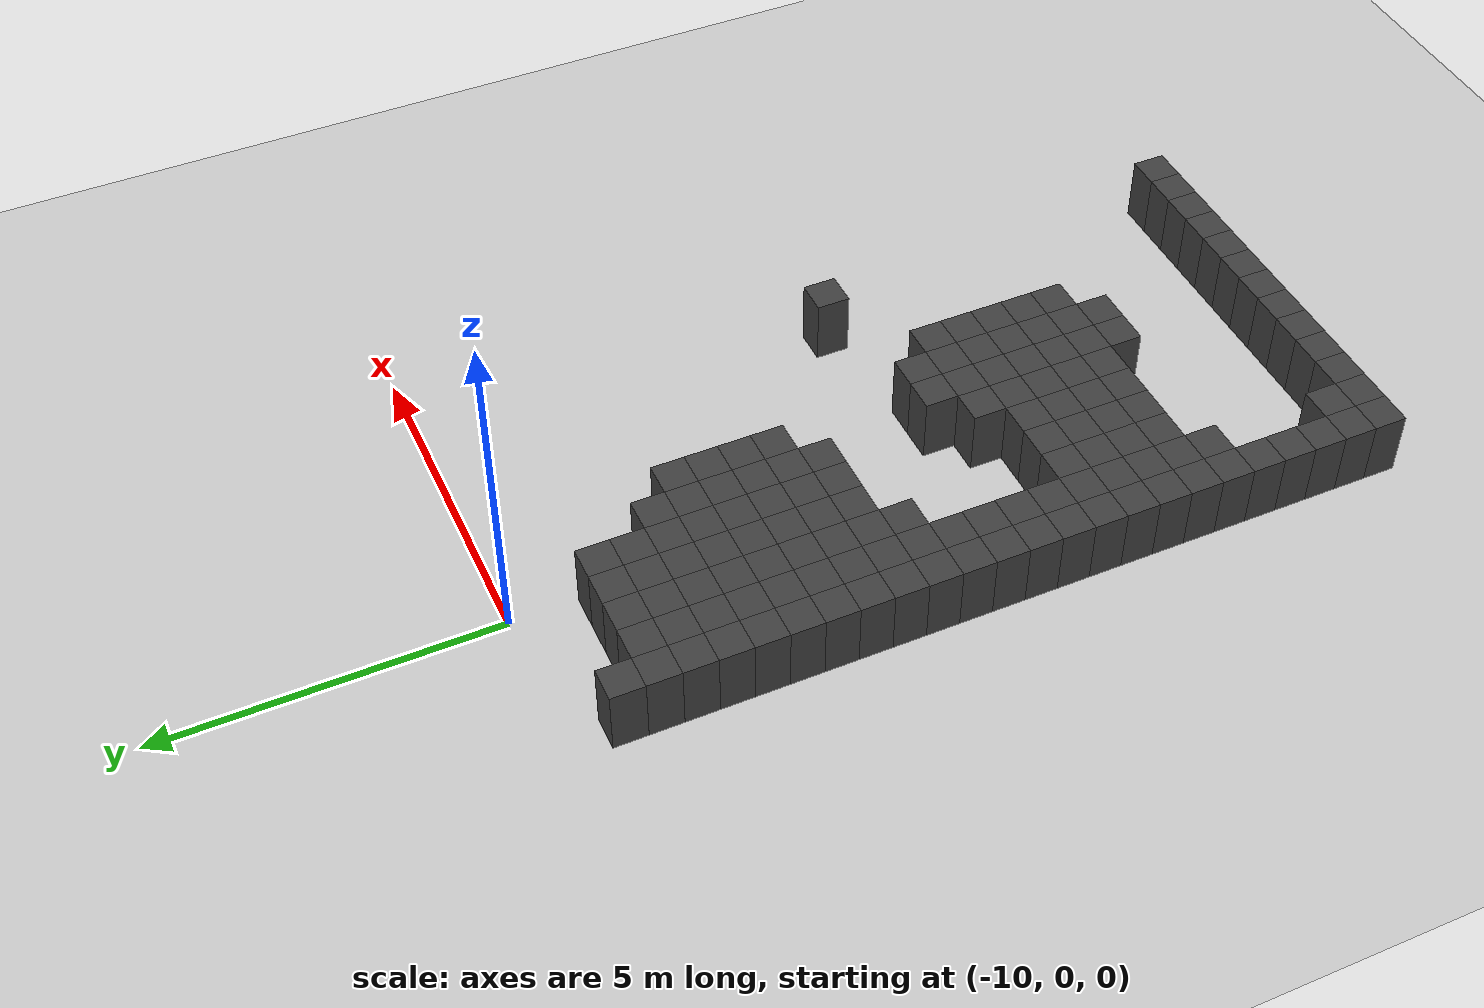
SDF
<sdf version="1.7">
 <world name="map_8843">
  <model name="ground_plane">
   <static>true</static>
   <link name="link">
    <collision name="collision">
     <geometry><plane><normal>0 0 1</normal><size>200 200</size></plane></geometry>
    </collision>
    <visual name="visual">
     <geometry><plane><normal>0 0 1</normal><size>200 200</size></plane></geometry>
     <material><ambient>0.8 0.8 0.8 1</ambient><diffuse>0.8 0.8 0.8 1</diffuse></material>
    </visual>
   </link>
  </model>
  <model name="maze_environment">
   <static>true</static>
   <link name="wall_516">
    <pose>-12.250 -0.750 0.500 0 0 0</pose>
    <collision name="col"><geometry><box><size>0.5 0.5 1.0</size></box></geometry></collision>
    <visual name="vis">
     <geometry><box><size>0.5 0.5 1.0</size></box></geometry>
     <material><ambient>0.15 0.15 0.15 1</ambient><diffuse>0.25 0.25 0.25 1</diffuse></material>
    </visual>
   </link>
   <link name="wall_536">
    <pose>-12.250 -1.250 0.500 0 0 0</pose>
    <collision name="col"><geometry><box><size>0.5 0.5 1.0</size></box></geometry></collision>
    <visual name="vis">
     <geometry><box><size>0.5 0.5 1.0</size></box></geometry>
     <material><ambient>0.15 0.15 0.15 1</ambient><diffuse>0.25 0.25 0.25 1</diffuse></material>
    </visual>
   </link>
   <link name="wall_537">
    <pose>-11.750 -1.250 0.500 0 0 0</pose>
    <collision name="col"><geometry><box><size>0.5 0.5 1.0</size></box></geometry></collision>
    <visual name="vis">
     <geometry><box><size>0.5 0.5 1.0</size></box></geometry>
     <material><ambient>0.15 0.15 0.15 1</ambient><diffuse>0.25 0.25 0.25 1</diffuse></material>
    </visual>
   </link>
   <link name="wall_538">
    <pose>-11.250 -1.250 0.500 0 0 0</pose>
    <collision name="col"><geometry><box><size>0.5 0.5 1.0</size></box></geometry></collision>
    <visual name="vis">
     <geometry><box><size>0.5 0.5 1.0</size></box></geometry>
     <material><ambient>0.15 0.15 0.15 1</ambient><diffuse>0.25 0.25 0.25 1</diffuse></material>
    </visual>
   </link>
   <link name="wall_539">
    <pose>-10.750 -1.250 0.500 0 0 0</pose>
    <collision name="col"><geometry><box><size>0.5 0.5 1.0</size></box></geometry></collision>
    <visual name="vis">
     <geometry><box><size>0.5 0.5 1.0</size></box></geometry>
     <material><ambient>0.15 0.15 0.15 1</ambient><diffuse>0.25 0.25 0.25 1</diffuse></material>
    </visual>
   </link>
   <link name="wall_540">
    <pose>-10.250 -1.250 0.500 0 0 0</pose>
    <collision name="col"><geometry><box><size>0.5 0.5 1.0</size></box></geometry></collision>
    <visual name="vis">
     <geometry><box><size>0.5 0.5 1.0</size></box></geometry>
     <material><ambient>0.15 0.15 0.15 1</ambient><diffuse>0.25 0.25 0.25 1</diffuse></material>
    </visual>
   </link>
   <link name="wall_553">
    <pose>-12.250 -1.750 0.500 0 0 0</pose>
    <collision name="col"><geometry><box><size>0.5 0.5 1.0</size></box></geometry></collision>
    <visual name="vis">
     <geometry><box><size>0.5 0.5 1.0</size></box></geometry>
     <material><ambient>0.15 0.15 0.15 1</ambient><diffuse>0.25 0.25 0.25 1</diffuse></material>
    </visual>
   </link>
   <link name="wall_554">
    <pose>-11.750 -1.750 0.500 0 0 0</pose>
    <collision name="col"><geometry><box><size>0.5 0.5 1.0</size></box></geometry></collision>
    <visual name="vis">
     <geometry><box><size>0.5 0.5 1.0</size></box></geometry>
     <material><ambient>0.15 0.15 0.15 1</ambient><diffuse>0.25 0.25 0.25 1</diffuse></material>
    </visual>
   </link>
   <link name="wall_555">
    <pose>-11.250 -1.750 0.500 0 0 0</pose>
    <collision name="col"><geometry><box><size>0.5 0.5 1.0</size></box></geometry></collision>
    <visual name="vis">
     <geometry><box><size>0.5 0.5 1.0</size></box></geometry>
     <material><ambient>0.15 0.15 0.15 1</ambient><diffuse>0.25 0.25 0.25 1</diffuse></material>
    </visual>
   </link>
   <link name="wall_556">
    <pose>-10.750 -1.750 0.500 0 0 0</pose>
    <collision name="col"><geometry><box><size>0.5 0.5 1.0</size></box></geometry></collision>
    <visual name="vis">
     <geometry><box><size>0.5 0.5 1.0</size></box></geometry>
     <material><ambient>0.15 0.15 0.15 1</ambient><diffuse>0.25 0.25 0.25 1</diffuse></material>
    </visual>
   </link>
   <link name="wall_557">
    <pose>-10.250 -1.750 0.500 0 0 0</pose>
    <collision name="col"><geometry><box><size>0.5 0.5 1.0</size></box></geometry></collision>
    <visual name="vis">
     <geometry><box><size>0.5 0.5 1.0</size></box></geometry>
     <material><ambient>0.15 0.15 0.15 1</ambient><diffuse>0.25 0.25 0.25 1</diffuse></material>
    </visual>
   </link>
   <link name="wall_565">
    <pose>-12.250 -2.250 0.500 0 0 0</pose>
    <collision name="col"><geometry><box><size>0.5 0.5 1.0</size></box></geometry></collision>
    <visual name="vis">
     <geometry><box><size>0.5 0.5 1.0</size></box></geometry>
     <material><ambient>0.15 0.15 0.15 1</ambient><diffuse>0.25 0.25 0.25 1</diffuse></material>
    </visual>
   </link>
   <link name="wall_566">
    <pose>-11.750 -2.250 0.500 0 0 0</pose>
    <collision name="col"><geometry><box><size>0.5 0.5 1.0</size></box></geometry></collision>
    <visual name="vis">
     <geometry><box><size>0.5 0.5 1.0</size></box></geometry>
     <material><ambient>0.15 0.15 0.15 1</ambient><diffuse>0.25 0.25 0.25 1</diffuse></material>
    </visual>
   </link>
   <link name="wall_567">
    <pose>-11.250 -2.250 0.500 0 0 0</pose>
    <collision name="col"><geometry><box><size>0.5 0.5 1.0</size></box></geometry></collision>
    <visual name="vis">
     <geometry><box><size>0.5 0.5 1.0</size></box></geometry>
     <material><ambient>0.15 0.15 0.15 1</ambient><diffuse>0.25 0.25 0.25 1</diffuse></material>
    </visual>
   </link>
   <link name="wall_568">
    <pose>-10.750 -2.250 0.500 0 0 0</pose>
    <collision name="col"><geometry><box><size>0.5 0.5 1.0</size></box></geometry></collision>
    <visual name="vis">
     <geometry><box><size>0.5 0.5 1.0</size></box></geometry>
     <material><ambient>0.15 0.15 0.15 1</ambient><diffuse>0.25 0.25 0.25 1</diffuse></material>
    </visual>
   </link>
   <link name="wall_569">
    <pose>-10.250 -2.250 0.500 0 0 0</pose>
    <collision name="col"><geometry><box><size>0.5 0.5 1.0</size></box></geometry></collision>
    <visual name="vis">
     <geometry><box><size>0.5 0.5 1.0</size></box></geometry>
     <material><ambient>0.15 0.15 0.15 1</ambient><diffuse>0.25 0.25 0.25 1</diffuse></material>
    </visual>
   </link>
   <link name="wall_570">
    <pose>-9.750 -2.250 0.500 0 0 0</pose>
    <collision name="col"><geometry><box><size>0.5 0.5 1.0</size></box></geometry></collision>
    <visual name="vis">
     <geometry><box><size>0.5 0.5 1.0</size></box></geometry>
     <material><ambient>0.15 0.15 0.15 1</ambient><diffuse>0.25 0.25 0.25 1</diffuse></material>
    </visual>
   </link>
   <link name="wall_578">
    <pose>-12.250 -2.750 0.500 0 0 0</pose>
    <collision name="col"><geometry><box><size>0.5 0.5 1.0</size></box></geometry></collision>
    <visual name="vis">
     <geometry><box><size>0.5 0.5 1.0</size></box></geometry>
     <material><ambient>0.15 0.15 0.15 1</ambient><diffuse>0.25 0.25 0.25 1</diffuse></material>
    </visual>
   </link>
   <link name="wall_579">
    <pose>-11.750 -2.750 0.500 0 0 0</pose>
    <collision name="col"><geometry><box><size>0.5 0.5 1.0</size></box></geometry></collision>
    <visual name="vis">
     <geometry><box><size>0.5 0.5 1.0</size></box></geometry>
     <material><ambient>0.15 0.15 0.15 1</ambient><diffuse>0.25 0.25 0.25 1</diffuse></material>
    </visual>
   </link>
   <link name="wall_580">
    <pose>-11.250 -2.750 0.500 0 0 0</pose>
    <collision name="col"><geometry><box><size>0.5 0.5 1.0</size></box></geometry></collision>
    <visual name="vis">
     <geometry><box><size>0.5 0.5 1.0</size></box></geometry>
     <material><ambient>0.15 0.15 0.15 1</ambient><diffuse>0.25 0.25 0.25 1</diffuse></material>
    </visual>
   </link>
   <link name="wall_581">
    <pose>-10.750 -2.750 0.500 0 0 0</pose>
    <collision name="col"><geometry><box><size>0.5 0.5 1.0</size></box></geometry></collision>
    <visual name="vis">
     <geometry><box><size>0.5 0.5 1.0</size></box></geometry>
     <material><ambient>0.15 0.15 0.15 1</ambient><diffuse>0.25 0.25 0.25 1</diffuse></material>
    </visual>
   </link>
   <link name="wall_582">
    <pose>-10.250 -2.750 0.500 0 0 0</pose>
    <collision name="col"><geometry><box><size>0.5 0.5 1.0</size></box></geometry></collision>
    <visual name="vis">
     <geometry><box><size>0.5 0.5 1.0</size></box></geometry>
     <material><ambient>0.15 0.15 0.15 1</ambient><diffuse>0.25 0.25 0.25 1</diffuse></material>
    </visual>
   </link>
   <link name="wall_583">
    <pose>-9.750 -2.750 0.500 0 0 0</pose>
    <collision name="col"><geometry><box><size>0.5 0.5 1.0</size></box></geometry></collision>
    <visual name="vis">
     <geometry><box><size>0.5 0.5 1.0</size></box></geometry>
     <material><ambient>0.15 0.15 0.15 1</ambient><diffuse>0.25 0.25 0.25 1</diffuse></material>
    </visual>
   </link>
   <link name="wall_584">
    <pose>-9.250 -2.750 0.500 0 0 0</pose>
    <collision name="col"><geometry><box><size>0.5 0.5 1.0</size></box></geometry></collision>
    <visual name="vis">
     <geometry><box><size>0.5 0.5 1.0</size></box></geometry>
     <material><ambient>0.15 0.15 0.15 1</ambient><diffuse>0.25 0.25 0.25 1</diffuse></material>
    </visual>
   </link>
   <link name="wall_591">
    <pose>-12.250 -3.250 0.500 0 0 0</pose>
    <collision name="col"><geometry><box><size>0.5 0.5 1.0</size></box></geometry></collision>
    <visual name="vis">
     <geometry><box><size>0.5 0.5 1.0</size></box></geometry>
     <material><ambient>0.15 0.15 0.15 1</ambient><diffuse>0.25 0.25 0.25 1</diffuse></material>
    </visual>
   </link>
   <link name="wall_592">
    <pose>-11.750 -3.250 0.500 0 0 0</pose>
    <collision name="col"><geometry><box><size>0.5 0.5 1.0</size></box></geometry></collision>
    <visual name="vis">
     <geometry><box><size>0.5 0.5 1.0</size></box></geometry>
     <material><ambient>0.15 0.15 0.15 1</ambient><diffuse>0.25 0.25 0.25 1</diffuse></material>
    </visual>
   </link>
   <link name="wall_593">
    <pose>-11.250 -3.250 0.500 0 0 0</pose>
    <collision name="col"><geometry><box><size>0.5 0.5 1.0</size></box></geometry></collision>
    <visual name="vis">
     <geometry><box><size>0.5 0.5 1.0</size></box></geometry>
     <material><ambient>0.15 0.15 0.15 1</ambient><diffuse>0.25 0.25 0.25 1</diffuse></material>
    </visual>
   </link>
   <link name="wall_594">
    <pose>-10.750 -3.250 0.500 0 0 0</pose>
    <collision name="col"><geometry><box><size>0.5 0.5 1.0</size></box></geometry></collision>
    <visual name="vis">
     <geometry><box><size>0.5 0.5 1.0</size></box></geometry>
     <material><ambient>0.15 0.15 0.15 1</ambient><diffuse>0.25 0.25 0.25 1</diffuse></material>
    </visual>
   </link>
   <link name="wall_595">
    <pose>-10.250 -3.250 0.500 0 0 0</pose>
    <collision name="col"><geometry><box><size>0.5 0.5 1.0</size></box></geometry></collision>
    <visual name="vis">
     <geometry><box><size>0.5 0.5 1.0</size></box></geometry>
     <material><ambient>0.15 0.15 0.15 1</ambient><diffuse>0.25 0.25 0.25 1</diffuse></material>
    </visual>
   </link>
   <link name="wall_596">
    <pose>-9.750 -3.250 0.500 0 0 0</pose>
    <collision name="col"><geometry><box><size>0.5 0.5 1.0</size></box></geometry></collision>
    <visual name="vis">
     <geometry><box><size>0.5 0.5 1.0</size></box></geometry>
     <material><ambient>0.15 0.15 0.15 1</ambient><diffuse>0.25 0.25 0.25 1</diffuse></material>
    </visual>
   </link>
   <link name="wall_597">
    <pose>-9.250 -3.250 0.500 0 0 0</pose>
    <collision name="col"><geometry><box><size>0.5 0.5 1.0</size></box></geometry></collision>
    <visual name="vis">
     <geometry><box><size>0.5 0.5 1.0</size></box></geometry>
     <material><ambient>0.15 0.15 0.15 1</ambient><diffuse>0.25 0.25 0.25 1</diffuse></material>
    </visual>
   </link>
   <link name="wall_605">
    <pose>-12.250 -3.750 0.500 0 0 0</pose>
    <collision name="col"><geometry><box><size>0.5 0.5 1.0</size></box></geometry></collision>
    <visual name="vis">
     <geometry><box><size>0.5 0.5 1.0</size></box></geometry>
     <material><ambient>0.15 0.15 0.15 1</ambient><diffuse>0.25 0.25 0.25 1</diffuse></material>
    </visual>
   </link>
   <link name="wall_606">
    <pose>-11.750 -3.750 0.500 0 0 0</pose>
    <collision name="col"><geometry><box><size>0.5 0.5 1.0</size></box></geometry></collision>
    <visual name="vis">
     <geometry><box><size>0.5 0.5 1.0</size></box></geometry>
     <material><ambient>0.15 0.15 0.15 1</ambient><diffuse>0.25 0.25 0.25 1</diffuse></material>
    </visual>
   </link>
   <link name="wall_607">
    <pose>-11.250 -3.750 0.500 0 0 0</pose>
    <collision name="col"><geometry><box><size>0.5 0.5 1.0</size></box></geometry></collision>
    <visual name="vis">
     <geometry><box><size>0.5 0.5 1.0</size></box></geometry>
     <material><ambient>0.15 0.15 0.15 1</ambient><diffuse>0.25 0.25 0.25 1</diffuse></material>
    </visual>
   </link>
   <link name="wall_608">
    <pose>-10.750 -3.750 0.500 0 0 0</pose>
    <collision name="col"><geometry><box><size>0.5 0.5 1.0</size></box></geometry></collision>
    <visual name="vis">
     <geometry><box><size>0.5 0.5 1.0</size></box></geometry>
     <material><ambient>0.15 0.15 0.15 1</ambient><diffuse>0.25 0.25 0.25 1</diffuse></material>
    </visual>
   </link>
   <link name="wall_609">
    <pose>-10.250 -3.750 0.500 0 0 0</pose>
    <collision name="col"><geometry><box><size>0.5 0.5 1.0</size></box></geometry></collision>
    <visual name="vis">
     <geometry><box><size>0.5 0.5 1.0</size></box></geometry>
     <material><ambient>0.15 0.15 0.15 1</ambient><diffuse>0.25 0.25 0.25 1</diffuse></material>
    </visual>
   </link>
   <link name="wall_610">
    <pose>-9.750 -3.750 0.500 0 0 0</pose>
    <collision name="col"><geometry><box><size>0.5 0.5 1.0</size></box></geometry></collision>
    <visual name="vis">
     <geometry><box><size>0.5 0.5 1.0</size></box></geometry>
     <material><ambient>0.15 0.15 0.15 1</ambient><diffuse>0.25 0.25 0.25 1</diffuse></material>
    </visual>
   </link>
   <link name="wall_611">
    <pose>-9.250 -3.750 0.500 0 0 0</pose>
    <collision name="col"><geometry><box><size>0.5 0.5 1.0</size></box></geometry></collision>
    <visual name="vis">
     <geometry><box><size>0.5 0.5 1.0</size></box></geometry>
     <material><ambient>0.15 0.15 0.15 1</ambient><diffuse>0.25 0.25 0.25 1</diffuse></material>
    </visual>
   </link>
   <link name="wall_625">
    <pose>-12.250 -4.250 0.500 0 0 0</pose>
    <collision name="col"><geometry><box><size>0.5 0.5 1.0</size></box></geometry></collision>
    <visual name="vis">
     <geometry><box><size>0.5 0.5 1.0</size></box></geometry>
     <material><ambient>0.15 0.15 0.15 1</ambient><diffuse>0.25 0.25 0.25 1</diffuse></material>
    </visual>
   </link>
   <link name="wall_626">
    <pose>-11.750 -4.250 0.500 0 0 0</pose>
    <collision name="col"><geometry><box><size>0.5 0.5 1.0</size></box></geometry></collision>
    <visual name="vis">
     <geometry><box><size>0.5 0.5 1.0</size></box></geometry>
     <material><ambient>0.15 0.15 0.15 1</ambient><diffuse>0.25 0.25 0.25 1</diffuse></material>
    </visual>
   </link>
   <link name="wall_627">
    <pose>-11.250 -4.250 0.500 0 0 0</pose>
    <collision name="col"><geometry><box><size>0.5 0.5 1.0</size></box></geometry></collision>
    <visual name="vis">
     <geometry><box><size>0.5 0.5 1.0</size></box></geometry>
     <material><ambient>0.15 0.15 0.15 1</ambient><diffuse>0.25 0.25 0.25 1</diffuse></material>
    </visual>
   </link>
   <link name="wall_628">
    <pose>-10.750 -4.250 0.500 0 0 0</pose>
    <collision name="col"><geometry><box><size>0.5 0.5 1.0</size></box></geometry></collision>
    <visual name="vis">
     <geometry><box><size>0.5 0.5 1.0</size></box></geometry>
     <material><ambient>0.15 0.15 0.15 1</ambient><diffuse>0.25 0.25 0.25 1</diffuse></material>
    </visual>
   </link>
   <link name="wall_629">
    <pose>-10.250 -4.250 0.500 0 0 0</pose>
    <collision name="col"><geometry><box><size>0.5 0.5 1.0</size></box></geometry></collision>
    <visual name="vis">
     <geometry><box><size>0.5 0.5 1.0</size></box></geometry>
     <material><ambient>0.15 0.15 0.15 1</ambient><diffuse>0.25 0.25 0.25 1</diffuse></material>
    </visual>
   </link>
   <link name="wall_630">
    <pose>-9.750 -4.250 0.500 0 0 0</pose>
    <collision name="col"><geometry><box><size>0.5 0.5 1.0</size></box></geometry></collision>
    <visual name="vis">
     <geometry><box><size>0.5 0.5 1.0</size></box></geometry>
     <material><ambient>0.15 0.15 0.15 1</ambient><diffuse>0.25 0.25 0.25 1</diffuse></material>
    </visual>
   </link>
   <link name="wall_631">
    <pose>-9.250 -4.250 0.500 0 0 0</pose>
    <collision name="col"><geometry><box><size>0.5 0.5 1.0</size></box></geometry></collision>
    <visual name="vis">
     <geometry><box><size>0.5 0.5 1.0</size></box></geometry>
     <material><ambient>0.15 0.15 0.15 1</ambient><diffuse>0.25 0.25 0.25 1</diffuse></material>
    </visual>
   </link>
   <link name="wall_644">
    <pose>-12.250 -4.750 0.500 0 0 0</pose>
    <collision name="col"><geometry><box><size>0.5 0.5 1.0</size></box></geometry></collision>
    <visual name="vis">
     <geometry><box><size>0.5 0.5 1.0</size></box></geometry>
     <material><ambient>0.15 0.15 0.15 1</ambient><diffuse>0.25 0.25 0.25 1</diffuse></material>
    </visual>
   </link>
   <link name="wall_645">
    <pose>-11.750 -4.750 0.500 0 0 0</pose>
    <collision name="col"><geometry><box><size>0.5 0.5 1.0</size></box></geometry></collision>
    <visual name="vis">
     <geometry><box><size>0.5 0.5 1.0</size></box></geometry>
     <material><ambient>0.15 0.15 0.15 1</ambient><diffuse>0.25 0.25 0.25 1</diffuse></material>
    </visual>
   </link>
   <link name="wall_646">
    <pose>-11.250 -4.750 0.500 0 0 0</pose>
    <collision name="col"><geometry><box><size>0.5 0.5 1.0</size></box></geometry></collision>
    <visual name="vis">
     <geometry><box><size>0.5 0.5 1.0</size></box></geometry>
     <material><ambient>0.15 0.15 0.15 1</ambient><diffuse>0.25 0.25 0.25 1</diffuse></material>
    </visual>
   </link>
   <link name="wall_647">
    <pose>-10.750 -4.750 0.500 0 0 0</pose>
    <collision name="col"><geometry><box><size>0.5 0.5 1.0</size></box></geometry></collision>
    <visual name="vis">
     <geometry><box><size>0.5 0.5 1.0</size></box></geometry>
     <material><ambient>0.15 0.15 0.15 1</ambient><diffuse>0.25 0.25 0.25 1</diffuse></material>
    </visual>
   </link>
   <link name="wall_648">
    <pose>-10.250 -4.750 0.500 0 0 0</pose>
    <collision name="col"><geometry><box><size>0.5 0.5 1.0</size></box></geometry></collision>
    <visual name="vis">
     <geometry><box><size>0.5 0.5 1.0</size></box></geometry>
     <material><ambient>0.15 0.15 0.15 1</ambient><diffuse>0.25 0.25 0.25 1</diffuse></material>
    </visual>
   </link>
   <link name="wall_649">
    <pose>-9.750 -4.750 0.500 0 0 0</pose>
    <collision name="col"><geometry><box><size>0.5 0.5 1.0</size></box></geometry></collision>
    <visual name="vis">
     <geometry><box><size>0.5 0.5 1.0</size></box></geometry>
     <material><ambient>0.15 0.15 0.15 1</ambient><diffuse>0.25 0.25 0.25 1</diffuse></material>
    </visual>
   </link>
   <link name="wall_663">
    <pose>-12.250 -5.250 0.500 0 0 0</pose>
    <collision name="col"><geometry><box><size>0.5 0.5 1.0</size></box></geometry></collision>
    <visual name="vis">
     <geometry><box><size>0.5 0.5 1.0</size></box></geometry>
     <material><ambient>0.15 0.15 0.15 1</ambient><diffuse>0.25 0.25 0.25 1</diffuse></material>
    </visual>
   </link>
   <link name="wall_664">
    <pose>-11.750 -5.250 0.500 0 0 0</pose>
    <collision name="col"><geometry><box><size>0.5 0.5 1.0</size></box></geometry></collision>
    <visual name="vis">
     <geometry><box><size>0.5 0.5 1.0</size></box></geometry>
     <material><ambient>0.15 0.15 0.15 1</ambient><diffuse>0.25 0.25 0.25 1</diffuse></material>
    </visual>
   </link>
   <link name="wall_665">
    <pose>-11.250 -5.250 0.500 0 0 0</pose>
    <collision name="col"><geometry><box><size>0.5 0.5 1.0</size></box></geometry></collision>
    <visual name="vis">
     <geometry><box><size>0.5 0.5 1.0</size></box></geometry>
     <material><ambient>0.15 0.15 0.15 1</ambient><diffuse>0.25 0.25 0.25 1</diffuse></material>
    </visual>
   </link>
   <link name="wall_685">
    <pose>-12.250 -5.750 0.500 0 0 0</pose>
    <collision name="col"><geometry><box><size>0.5 0.5 1.0</size></box></geometry></collision>
    <visual name="vis">
     <geometry><box><size>0.5 0.5 1.0</size></box></geometry>
     <material><ambient>0.15 0.15 0.15 1</ambient><diffuse>0.25 0.25 0.25 1</diffuse></material>
    </visual>
   </link>
   <link name="wall_686">
    <pose>-11.750 -5.750 0.500 0 0 0</pose>
    <collision name="col"><geometry><box><size>0.5 0.5 1.0</size></box></geometry></collision>
    <visual name="vis">
     <geometry><box><size>0.5 0.5 1.0</size></box></geometry>
     <material><ambient>0.15 0.15 0.15 1</ambient><diffuse>0.25 0.25 0.25 1</diffuse></material>
    </visual>
   </link>
   <link name="wall_708">
    <pose>-12.250 -6.250 0.500 0 0 0</pose>
    <collision name="col"><geometry><box><size>0.5 0.5 1.0</size></box></geometry></collision>
    <visual name="vis">
     <geometry><box><size>0.5 0.5 1.0</size></box></geometry>
     <material><ambient>0.15 0.15 0.15 1</ambient><diffuse>0.25 0.25 0.25 1</diffuse></material>
    </visual>
   </link>
   <link name="wall_709">
    <pose>-11.750 -6.250 0.500 0 0 0</pose>
    <collision name="col"><geometry><box><size>0.5 0.5 1.0</size></box></geometry></collision>
    <visual name="vis">
     <geometry><box><size>0.5 0.5 1.0</size></box></geometry>
     <material><ambient>0.15 0.15 0.15 1</ambient><diffuse>0.25 0.25 0.25 1</diffuse></material>
    </visual>
   </link>
   <link name="wall_710">
    <pose>-6.750 -6.250 0.500 0 0 0</pose>
    <collision name="col"><geometry><box><size>0.5 0.5 1.0</size></box></geometry></collision>
    <visual name="vis">
     <geometry><box><size>0.5 0.5 1.0</size></box></geometry>
     <material><ambient>0.15 0.15 0.15 1</ambient><diffuse>0.25 0.25 0.25 1</diffuse></material>
    </visual>
   </link>
   <link name="wall_732">
    <pose>-12.250 -6.750 0.500 0 0 0</pose>
    <collision name="col"><geometry><box><size>0.5 0.5 1.0</size></box></geometry></collision>
    <visual name="vis">
     <geometry><box><size>0.5 0.5 1.0</size></box></geometry>
     <material><ambient>0.15 0.15 0.15 1</ambient><diffuse>0.25 0.25 0.25 1</diffuse></material>
    </visual>
   </link>
   <link name="wall_733">
    <pose>-11.750 -6.750 0.500 0 0 0</pose>
    <collision name="col"><geometry><box><size>0.5 0.5 1.0</size></box></geometry></collision>
    <visual name="vis">
     <geometry><box><size>0.5 0.5 1.0</size></box></geometry>
     <material><ambient>0.15 0.15 0.15 1</ambient><diffuse>0.25 0.25 0.25 1</diffuse></material>
    </visual>
   </link>
   <link name="wall_734">
    <pose>-9.250 -6.750 0.500 0 0 0</pose>
    <collision name="col"><geometry><box><size>0.5 0.5 1.0</size></box></geometry></collision>
    <visual name="vis">
     <geometry><box><size>0.5 0.5 1.0</size></box></geometry>
     <material><ambient>0.15 0.15 0.15 1</ambient><diffuse>0.25 0.25 0.25 1</diffuse></material>
    </visual>
   </link>
   <link name="wall_735">
    <pose>-8.750 -6.750 0.500 0 0 0</pose>
    <collision name="col"><geometry><box><size>0.5 0.5 1.0</size></box></geometry></collision>
    <visual name="vis">
     <geometry><box><size>0.5 0.5 1.0</size></box></geometry>
     <material><ambient>0.15 0.15 0.15 1</ambient><diffuse>0.25 0.25 0.25 1</diffuse></material>
    </visual>
   </link>
   <link name="wall_754">
    <pose>-12.250 -7.250 0.500 0 0 0</pose>
    <collision name="col"><geometry><box><size>0.5 0.5 1.0</size></box></geometry></collision>
    <visual name="vis">
     <geometry><box><size>0.5 0.5 1.0</size></box></geometry>
     <material><ambient>0.15 0.15 0.15 1</ambient><diffuse>0.25 0.25 0.25 1</diffuse></material>
    </visual>
   </link>
   <link name="wall_755">
    <pose>-11.750 -7.250 0.500 0 0 0</pose>
    <collision name="col"><geometry><box><size>0.5 0.5 1.0</size></box></geometry></collision>
    <visual name="vis">
     <geometry><box><size>0.5 0.5 1.0</size></box></geometry>
     <material><ambient>0.15 0.15 0.15 1</ambient><diffuse>0.25 0.25 0.25 1</diffuse></material>
    </visual>
   </link>
   <link name="wall_756">
    <pose>-9.750 -7.250 0.500 0 0 0</pose>
    <collision name="col"><geometry><box><size>0.5 0.5 1.0</size></box></geometry></collision>
    <visual name="vis">
     <geometry><box><size>0.5 0.5 1.0</size></box></geometry>
     <material><ambient>0.15 0.15 0.15 1</ambient><diffuse>0.25 0.25 0.25 1</diffuse></material>
    </visual>
   </link>
   <link name="wall_757">
    <pose>-9.250 -7.250 0.500 0 0 0</pose>
    <collision name="col"><geometry><box><size>0.5 0.5 1.0</size></box></geometry></collision>
    <visual name="vis">
     <geometry><box><size>0.5 0.5 1.0</size></box></geometry>
     <material><ambient>0.15 0.15 0.15 1</ambient><diffuse>0.25 0.25 0.25 1</diffuse></material>
    </visual>
   </link>
   <link name="wall_758">
    <pose>-8.750 -7.250 0.500 0 0 0</pose>
    <collision name="col"><geometry><box><size>0.5 0.5 1.0</size></box></geometry></collision>
    <visual name="vis">
     <geometry><box><size>0.5 0.5 1.0</size></box></geometry>
     <material><ambient>0.15 0.15 0.15 1</ambient><diffuse>0.25 0.25 0.25 1</diffuse></material>
    </visual>
   </link>
   <link name="wall_759">
    <pose>-8.250 -7.250 0.500 0 0 0</pose>
    <collision name="col"><geometry><box><size>0.5 0.5 1.0</size></box></geometry></collision>
    <visual name="vis">
     <geometry><box><size>0.5 0.5 1.0</size></box></geometry>
     <material><ambient>0.15 0.15 0.15 1</ambient><diffuse>0.25 0.25 0.25 1</diffuse></material>
    </visual>
   </link>
   <link name="wall_777">
    <pose>-12.250 -7.750 0.500 0 0 0</pose>
    <collision name="col"><geometry><box><size>0.5 0.5 1.0</size></box></geometry></collision>
    <visual name="vis">
     <geometry><box><size>0.5 0.5 1.0</size></box></geometry>
     <material><ambient>0.15 0.15 0.15 1</ambient><diffuse>0.25 0.25 0.25 1</diffuse></material>
    </visual>
   </link>
   <link name="wall_778">
    <pose>-11.750 -7.750 0.500 0 0 0</pose>
    <collision name="col"><geometry><box><size>0.5 0.5 1.0</size></box></geometry></collision>
    <visual name="vis">
     <geometry><box><size>0.5 0.5 1.0</size></box></geometry>
     <material><ambient>0.15 0.15 0.15 1</ambient><diffuse>0.25 0.25 0.25 1</diffuse></material>
    </visual>
   </link>
   <link name="wall_779">
    <pose>-11.250 -7.750 0.500 0 0 0</pose>
    <collision name="col"><geometry><box><size>0.5 0.5 1.0</size></box></geometry></collision>
    <visual name="vis">
     <geometry><box><size>0.5 0.5 1.0</size></box></geometry>
     <material><ambient>0.15 0.15 0.15 1</ambient><diffuse>0.25 0.25 0.25 1</diffuse></material>
    </visual>
   </link>
   <link name="wall_780">
    <pose>-10.750 -7.750 0.500 0 0 0</pose>
    <collision name="col"><geometry><box><size>0.5 0.5 1.0</size></box></geometry></collision>
    <visual name="vis">
     <geometry><box><size>0.5 0.5 1.0</size></box></geometry>
     <material><ambient>0.15 0.15 0.15 1</ambient><diffuse>0.25 0.25 0.25 1</diffuse></material>
    </visual>
   </link>
   <link name="wall_781">
    <pose>-10.250 -7.750 0.500 0 0 0</pose>
    <collision name="col"><geometry><box><size>0.5 0.5 1.0</size></box></geometry></collision>
    <visual name="vis">
     <geometry><box><size>0.5 0.5 1.0</size></box></geometry>
     <material><ambient>0.15 0.15 0.15 1</ambient><diffuse>0.25 0.25 0.25 1</diffuse></material>
    </visual>
   </link>
   <link name="wall_782">
    <pose>-9.750 -7.750 0.500 0 0 0</pose>
    <collision name="col"><geometry><box><size>0.5 0.5 1.0</size></box></geometry></collision>
    <visual name="vis">
     <geometry><box><size>0.5 0.5 1.0</size></box></geometry>
     <material><ambient>0.15 0.15 0.15 1</ambient><diffuse>0.25 0.25 0.25 1</diffuse></material>
    </visual>
   </link>
   <link name="wall_783">
    <pose>-9.250 -7.750 0.500 0 0 0</pose>
    <collision name="col"><geometry><box><size>0.5 0.5 1.0</size></box></geometry></collision>
    <visual name="vis">
     <geometry><box><size>0.5 0.5 1.0</size></box></geometry>
     <material><ambient>0.15 0.15 0.15 1</ambient><diffuse>0.25 0.25 0.25 1</diffuse></material>
    </visual>
   </link>
   <link name="wall_784">
    <pose>-8.750 -7.750 0.500 0 0 0</pose>
    <collision name="col"><geometry><box><size>0.5 0.5 1.0</size></box></geometry></collision>
    <visual name="vis">
     <geometry><box><size>0.5 0.5 1.0</size></box></geometry>
     <material><ambient>0.15 0.15 0.15 1</ambient><diffuse>0.25 0.25 0.25 1</diffuse></material>
    </visual>
   </link>
   <link name="wall_785">
    <pose>-8.250 -7.750 0.500 0 0 0</pose>
    <collision name="col"><geometry><box><size>0.5 0.5 1.0</size></box></geometry></collision>
    <visual name="vis">
     <geometry><box><size>0.5 0.5 1.0</size></box></geometry>
     <material><ambient>0.15 0.15 0.15 1</ambient><diffuse>0.25 0.25 0.25 1</diffuse></material>
    </visual>
   </link>
   <link name="wall_801">
    <pose>-12.250 -8.250 0.500 0 0 0</pose>
    <collision name="col"><geometry><box><size>0.5 0.5 1.0</size></box></geometry></collision>
    <visual name="vis">
     <geometry><box><size>0.5 0.5 1.0</size></box></geometry>
     <material><ambient>0.15 0.15 0.15 1</ambient><diffuse>0.25 0.25 0.25 1</diffuse></material>
    </visual>
   </link>
   <link name="wall_802">
    <pose>-11.750 -8.250 0.500 0 0 0</pose>
    <collision name="col"><geometry><box><size>0.5 0.5 1.0</size></box></geometry></collision>
    <visual name="vis">
     <geometry><box><size>0.5 0.5 1.0</size></box></geometry>
     <material><ambient>0.15 0.15 0.15 1</ambient><diffuse>0.25 0.25 0.25 1</diffuse></material>
    </visual>
   </link>
   <link name="wall_803">
    <pose>-11.250 -8.250 0.500 0 0 0</pose>
    <collision name="col"><geometry><box><size>0.5 0.5 1.0</size></box></geometry></collision>
    <visual name="vis">
     <geometry><box><size>0.5 0.5 1.0</size></box></geometry>
     <material><ambient>0.15 0.15 0.15 1</ambient><diffuse>0.25 0.25 0.25 1</diffuse></material>
    </visual>
   </link>
   <link name="wall_804">
    <pose>-10.750 -8.250 0.500 0 0 0</pose>
    <collision name="col"><geometry><box><size>0.5 0.5 1.0</size></box></geometry></collision>
    <visual name="vis">
     <geometry><box><size>0.5 0.5 1.0</size></box></geometry>
     <material><ambient>0.15 0.15 0.15 1</ambient><diffuse>0.25 0.25 0.25 1</diffuse></material>
    </visual>
   </link>
   <link name="wall_805">
    <pose>-10.250 -8.250 0.500 0 0 0</pose>
    <collision name="col"><geometry><box><size>0.5 0.5 1.0</size></box></geometry></collision>
    <visual name="vis">
     <geometry><box><size>0.5 0.5 1.0</size></box></geometry>
     <material><ambient>0.15 0.15 0.15 1</ambient><diffuse>0.25 0.25 0.25 1</diffuse></material>
    </visual>
   </link>
   <link name="wall_806">
    <pose>-9.750 -8.250 0.500 0 0 0</pose>
    <collision name="col"><geometry><box><size>0.5 0.5 1.0</size></box></geometry></collision>
    <visual name="vis">
     <geometry><box><size>0.5 0.5 1.0</size></box></geometry>
     <material><ambient>0.15 0.15 0.15 1</ambient><diffuse>0.25 0.25 0.25 1</diffuse></material>
    </visual>
   </link>
   <link name="wall_807">
    <pose>-9.250 -8.250 0.500 0 0 0</pose>
    <collision name="col"><geometry><box><size>0.5 0.5 1.0</size></box></geometry></collision>
    <visual name="vis">
     <geometry><box><size>0.5 0.5 1.0</size></box></geometry>
     <material><ambient>0.15 0.15 0.15 1</ambient><diffuse>0.25 0.25 0.25 1</diffuse></material>
    </visual>
   </link>
   <link name="wall_808">
    <pose>-8.750 -8.250 0.500 0 0 0</pose>
    <collision name="col"><geometry><box><size>0.5 0.5 1.0</size></box></geometry></collision>
    <visual name="vis">
     <geometry><box><size>0.5 0.5 1.0</size></box></geometry>
     <material><ambient>0.15 0.15 0.15 1</ambient><diffuse>0.25 0.25 0.25 1</diffuse></material>
    </visual>
   </link>
   <link name="wall_809">
    <pose>-8.250 -8.250 0.500 0 0 0</pose>
    <collision name="col"><geometry><box><size>0.5 0.5 1.0</size></box></geometry></collision>
    <visual name="vis">
     <geometry><box><size>0.5 0.5 1.0</size></box></geometry>
     <material><ambient>0.15 0.15 0.15 1</ambient><diffuse>0.25 0.25 0.25 1</diffuse></material>
    </visual>
   </link>
   <link name="wall_823">
    <pose>-12.250 -8.750 0.500 0 0 0</pose>
    <collision name="col"><geometry><box><size>0.5 0.5 1.0</size></box></geometry></collision>
    <visual name="vis">
     <geometry><box><size>0.5 0.5 1.0</size></box></geometry>
     <material><ambient>0.15 0.15 0.15 1</ambient><diffuse>0.25 0.25 0.25 1</diffuse></material>
    </visual>
   </link>
   <link name="wall_824">
    <pose>-11.750 -8.750 0.500 0 0 0</pose>
    <collision name="col"><geometry><box><size>0.5 0.5 1.0</size></box></geometry></collision>
    <visual name="vis">
     <geometry><box><size>0.5 0.5 1.0</size></box></geometry>
     <material><ambient>0.15 0.15 0.15 1</ambient><diffuse>0.25 0.25 0.25 1</diffuse></material>
    </visual>
   </link>
   <link name="wall_825">
    <pose>-11.250 -8.750 0.500 0 0 0</pose>
    <collision name="col"><geometry><box><size>0.5 0.5 1.0</size></box></geometry></collision>
    <visual name="vis">
     <geometry><box><size>0.5 0.5 1.0</size></box></geometry>
     <material><ambient>0.15 0.15 0.15 1</ambient><diffuse>0.25 0.25 0.25 1</diffuse></material>
    </visual>
   </link>
   <link name="wall_826">
    <pose>-10.750 -8.750 0.500 0 0 0</pose>
    <collision name="col"><geometry><box><size>0.5 0.5 1.0</size></box></geometry></collision>
    <visual name="vis">
     <geometry><box><size>0.5 0.5 1.0</size></box></geometry>
     <material><ambient>0.15 0.15 0.15 1</ambient><diffuse>0.25 0.25 0.25 1</diffuse></material>
    </visual>
   </link>
   <link name="wall_827">
    <pose>-10.250 -8.750 0.500 0 0 0</pose>
    <collision name="col"><geometry><box><size>0.5 0.5 1.0</size></box></geometry></collision>
    <visual name="vis">
     <geometry><box><size>0.5 0.5 1.0</size></box></geometry>
     <material><ambient>0.15 0.15 0.15 1</ambient><diffuse>0.25 0.25 0.25 1</diffuse></material>
    </visual>
   </link>
   <link name="wall_828">
    <pose>-9.750 -8.750 0.500 0 0 0</pose>
    <collision name="col"><geometry><box><size>0.5 0.5 1.0</size></box></geometry></collision>
    <visual name="vis">
     <geometry><box><size>0.5 0.5 1.0</size></box></geometry>
     <material><ambient>0.15 0.15 0.15 1</ambient><diffuse>0.25 0.25 0.25 1</diffuse></material>
    </visual>
   </link>
   <link name="wall_829">
    <pose>-9.250 -8.750 0.500 0 0 0</pose>
    <collision name="col"><geometry><box><size>0.5 0.5 1.0</size></box></geometry></collision>
    <visual name="vis">
     <geometry><box><size>0.5 0.5 1.0</size></box></geometry>
     <material><ambient>0.15 0.15 0.15 1</ambient><diffuse>0.25 0.25 0.25 1</diffuse></material>
    </visual>
   </link>
   <link name="wall_830">
    <pose>-8.750 -8.750 0.500 0 0 0</pose>
    <collision name="col"><geometry><box><size>0.5 0.5 1.0</size></box></geometry></collision>
    <visual name="vis">
     <geometry><box><size>0.5 0.5 1.0</size></box></geometry>
     <material><ambient>0.15 0.15 0.15 1</ambient><diffuse>0.25 0.25 0.25 1</diffuse></material>
    </visual>
   </link>
   <link name="wall_831">
    <pose>-8.250 -8.750 0.500 0 0 0</pose>
    <collision name="col"><geometry><box><size>0.5 0.5 1.0</size></box></geometry></collision>
    <visual name="vis">
     <geometry><box><size>0.5 0.5 1.0</size></box></geometry>
     <material><ambient>0.15 0.15 0.15 1</ambient><diffuse>0.25 0.25 0.25 1</diffuse></material>
    </visual>
   </link>
   <link name="wall_844">
    <pose>-12.250 -9.250 0.500 0 0 0</pose>
    <collision name="col"><geometry><box><size>0.5 0.5 1.0</size></box></geometry></collision>
    <visual name="vis">
     <geometry><box><size>0.5 0.5 1.0</size></box></geometry>
     <material><ambient>0.15 0.15 0.15 1</ambient><diffuse>0.25 0.25 0.25 1</diffuse></material>
    </visual>
   </link>
   <link name="wall_845">
    <pose>-11.750 -9.250 0.500 0 0 0</pose>
    <collision name="col"><geometry><box><size>0.5 0.5 1.0</size></box></geometry></collision>
    <visual name="vis">
     <geometry><box><size>0.5 0.5 1.0</size></box></geometry>
     <material><ambient>0.15 0.15 0.15 1</ambient><diffuse>0.25 0.25 0.25 1</diffuse></material>
    </visual>
   </link>
   <link name="wall_846">
    <pose>-11.250 -9.250 0.500 0 0 0</pose>
    <collision name="col"><geometry><box><size>0.5 0.5 1.0</size></box></geometry></collision>
    <visual name="vis">
     <geometry><box><size>0.5 0.5 1.0</size></box></geometry>
     <material><ambient>0.15 0.15 0.15 1</ambient><diffuse>0.25 0.25 0.25 1</diffuse></material>
    </visual>
   </link>
   <link name="wall_847">
    <pose>-10.750 -9.250 0.500 0 0 0</pose>
    <collision name="col"><geometry><box><size>0.5 0.5 1.0</size></box></geometry></collision>
    <visual name="vis">
     <geometry><box><size>0.5 0.5 1.0</size></box></geometry>
     <material><ambient>0.15 0.15 0.15 1</ambient><diffuse>0.25 0.25 0.25 1</diffuse></material>
    </visual>
   </link>
   <link name="wall_848">
    <pose>-10.250 -9.250 0.500 0 0 0</pose>
    <collision name="col"><geometry><box><size>0.5 0.5 1.0</size></box></geometry></collision>
    <visual name="vis">
     <geometry><box><size>0.5 0.5 1.0</size></box></geometry>
     <material><ambient>0.15 0.15 0.15 1</ambient><diffuse>0.25 0.25 0.25 1</diffuse></material>
    </visual>
   </link>
   <link name="wall_849">
    <pose>-9.750 -9.250 0.500 0 0 0</pose>
    <collision name="col"><geometry><box><size>0.5 0.5 1.0</size></box></geometry></collision>
    <visual name="vis">
     <geometry><box><size>0.5 0.5 1.0</size></box></geometry>
     <material><ambient>0.15 0.15 0.15 1</ambient><diffuse>0.25 0.25 0.25 1</diffuse></material>
    </visual>
   </link>
   <link name="wall_850">
    <pose>-9.250 -9.250 0.500 0 0 0</pose>
    <collision name="col"><geometry><box><size>0.5 0.5 1.0</size></box></geometry></collision>
    <visual name="vis">
     <geometry><box><size>0.5 0.5 1.0</size></box></geometry>
     <material><ambient>0.15 0.15 0.15 1</ambient><diffuse>0.25 0.25 0.25 1</diffuse></material>
    </visual>
   </link>
   <link name="wall_851">
    <pose>-8.750 -9.250 0.500 0 0 0</pose>
    <collision name="col"><geometry><box><size>0.5 0.5 1.0</size></box></geometry></collision>
    <visual name="vis">
     <geometry><box><size>0.5 0.5 1.0</size></box></geometry>
     <material><ambient>0.15 0.15 0.15 1</ambient><diffuse>0.25 0.25 0.25 1</diffuse></material>
    </visual>
   </link>
   <link name="wall_852">
    <pose>-8.250 -9.250 0.500 0 0 0</pose>
    <collision name="col"><geometry><box><size>0.5 0.5 1.0</size></box></geometry></collision>
    <visual name="vis">
     <geometry><box><size>0.5 0.5 1.0</size></box></geometry>
     <material><ambient>0.15 0.15 0.15 1</ambient><diffuse>0.25 0.25 0.25 1</diffuse></material>
    </visual>
   </link>
   <link name="wall_868">
    <pose>-12.250 -9.750 0.500 0 0 0</pose>
    <collision name="col"><geometry><box><size>0.5 0.5 1.0</size></box></geometry></collision>
    <visual name="vis">
     <geometry><box><size>0.5 0.5 1.0</size></box></geometry>
     <material><ambient>0.15 0.15 0.15 1</ambient><diffuse>0.25 0.25 0.25 1</diffuse></material>
    </visual>
   </link>
   <link name="wall_869">
    <pose>-11.750 -9.750 0.500 0 0 0</pose>
    <collision name="col"><geometry><box><size>0.5 0.5 1.0</size></box></geometry></collision>
    <visual name="vis">
     <geometry><box><size>0.5 0.5 1.0</size></box></geometry>
     <material><ambient>0.15 0.15 0.15 1</ambient><diffuse>0.25 0.25 0.25 1</diffuse></material>
    </visual>
   </link>
   <link name="wall_870">
    <pose>-9.250 -9.750 0.500 0 0 0</pose>
    <collision name="col"><geometry><box><size>0.5 0.5 1.0</size></box></geometry></collision>
    <visual name="vis">
     <geometry><box><size>0.5 0.5 1.0</size></box></geometry>
     <material><ambient>0.15 0.15 0.15 1</ambient><diffuse>0.25 0.25 0.25 1</diffuse></material>
    </visual>
   </link>
   <link name="wall_871">
    <pose>-8.750 -9.750 0.500 0 0 0</pose>
    <collision name="col"><geometry><box><size>0.5 0.5 1.0</size></box></geometry></collision>
    <visual name="vis">
     <geometry><box><size>0.5 0.5 1.0</size></box></geometry>
     <material><ambient>0.15 0.15 0.15 1</ambient><diffuse>0.25 0.25 0.25 1</diffuse></material>
    </visual>
   </link>
   <link name="wall_886">
    <pose>-12.250 -10.250 0.500 0 0 0</pose>
    <collision name="col"><geometry><box><size>0.5 0.5 1.0</size></box></geometry></collision>
    <visual name="vis">
     <geometry><box><size>0.5 0.5 1.0</size></box></geometry>
     <material><ambient>0.15 0.15 0.15 1</ambient><diffuse>0.25 0.25 0.25 1</diffuse></material>
    </visual>
   </link>
   <link name="wall_900">
    <pose>-12.250 -10.750 0.500 0 0 0</pose>
    <collision name="col"><geometry><box><size>0.5 0.5 1.0</size></box></geometry></collision>
    <visual name="vis">
     <geometry><box><size>0.5 0.5 1.0</size></box></geometry>
     <material><ambient>0.15 0.15 0.15 1</ambient><diffuse>0.25 0.25 0.25 1</diffuse></material>
    </visual>
   </link>
   <link name="wall_917">
    <pose>-12.250 -11.250 0.500 0 0 0</pose>
    <collision name="col"><geometry><box><size>0.5 0.5 1.0</size></box></geometry></collision>
    <visual name="vis">
     <geometry><box><size>0.5 0.5 1.0</size></box></geometry>
     <material><ambient>0.15 0.15 0.15 1</ambient><diffuse>0.25 0.25 0.25 1</diffuse></material>
    </visual>
   </link>
   <link name="wall_939">
    <pose>-12.250 -11.750 0.500 0 0 0</pose>
    <collision name="col"><geometry><box><size>0.5 0.5 1.0</size></box></geometry></collision>
    <visual name="vis">
     <geometry><box><size>0.5 0.5 1.0</size></box></geometry>
     <material><ambient>0.15 0.15 0.15 1</ambient><diffuse>0.25 0.25 0.25 1</diffuse></material>
    </visual>
   </link>
   <link name="wall_940">
    <pose>-11.750 -11.750 0.500 0 0 0</pose>
    <collision name="col"><geometry><box><size>0.5 0.5 1.0</size></box></geometry></collision>
    <visual name="vis">
     <geometry><box><size>0.5 0.5 1.0</size></box></geometry>
     <material><ambient>0.15 0.15 0.15 1</ambient><diffuse>0.25 0.25 0.25 1</diffuse></material>
    </visual>
   </link>
   <link name="wall_965">
    <pose>-12.250 -12.250 0.500 0 0 0</pose>
    <collision name="col"><geometry><box><size>0.5 0.5 1.0</size></box></geometry></collision>
    <visual name="vis">
     <geometry><box><size>0.5 0.5 1.0</size></box></geometry>
     <material><ambient>0.15 0.15 0.15 1</ambient><diffuse>0.25 0.25 0.25 1</diffuse></material>
    </visual>
   </link>
   <link name="wall_966">
    <pose>-11.750 -12.250 0.500 0 0 0</pose>
    <collision name="col"><geometry><box><size>0.5 0.5 1.0</size></box></geometry></collision>
    <visual name="vis">
     <geometry><box><size>0.5 0.5 1.0</size></box></geometry>
     <material><ambient>0.15 0.15 0.15 1</ambient><diffuse>0.25 0.25 0.25 1</diffuse></material>
    </visual>
   </link>
   <link name="wall_967">
    <pose>-11.250 -12.250 0.500 0 0 0</pose>
    <collision name="col"><geometry><box><size>0.5 0.5 1.0</size></box></geometry></collision>
    <visual name="vis">
     <geometry><box><size>0.5 0.5 1.0</size></box></geometry>
     <material><ambient>0.15 0.15 0.15 1</ambient><diffuse>0.25 0.25 0.25 1</diffuse></material>
    </visual>
   </link>
   <link name="wall_968">
    <pose>-10.750 -12.250 0.500 0 0 0</pose>
    <collision name="col"><geometry><box><size>0.5 0.5 1.0</size></box></geometry></collision>
    <visual name="vis">
     <geometry><box><size>0.5 0.5 1.0</size></box></geometry>
     <material><ambient>0.15 0.15 0.15 1</ambient><diffuse>0.25 0.25 0.25 1</diffuse></material>
    </visual>
   </link>
   <link name="wall_969">
    <pose>-10.250 -12.250 0.500 0 0 0</pose>
    <collision name="col"><geometry><box><size>0.5 0.5 1.0</size></box></geometry></collision>
    <visual name="vis">
     <geometry><box><size>0.5 0.5 1.0</size></box></geometry>
     <material><ambient>0.15 0.15 0.15 1</ambient><diffuse>0.25 0.25 0.25 1</diffuse></material>
    </visual>
   </link>
   <link name="wall_970">
    <pose>-9.750 -12.250 0.500 0 0 0</pose>
    <collision name="col"><geometry><box><size>0.5 0.5 1.0</size></box></geometry></collision>
    <visual name="vis">
     <geometry><box><size>0.5 0.5 1.0</size></box></geometry>
     <material><ambient>0.15 0.15 0.15 1</ambient><diffuse>0.25 0.25 0.25 1</diffuse></material>
    </visual>
   </link>
   <link name="wall_971">
    <pose>-9.250 -12.250 0.500 0 0 0</pose>
    <collision name="col"><geometry><box><size>0.5 0.5 1.0</size></box></geometry></collision>
    <visual name="vis">
     <geometry><box><size>0.5 0.5 1.0</size></box></geometry>
     <material><ambient>0.15 0.15 0.15 1</ambient><diffuse>0.25 0.25 0.25 1</diffuse></material>
    </visual>
   </link>
   <link name="wall_972">
    <pose>-8.750 -12.250 0.500 0 0 0</pose>
    <collision name="col"><geometry><box><size>0.5 0.5 1.0</size></box></geometry></collision>
    <visual name="vis">
     <geometry><box><size>0.5 0.5 1.0</size></box></geometry>
     <material><ambient>0.15 0.15 0.15 1</ambient><diffuse>0.25 0.25 0.25 1</diffuse></material>
    </visual>
   </link>
   <link name="wall_973">
    <pose>-8.250 -12.250 0.500 0 0 0</pose>
    <collision name="col"><geometry><box><size>0.5 0.5 1.0</size></box></geometry></collision>
    <visual name="vis">
     <geometry><box><size>0.5 0.5 1.0</size></box></geometry>
     <material><ambient>0.15 0.15 0.15 1</ambient><diffuse>0.25 0.25 0.25 1</diffuse></material>
    </visual>
   </link>
   <link name="wall_974">
    <pose>-7.750 -12.250 0.500 0 0 0</pose>
    <collision name="col"><geometry><box><size>0.5 0.5 1.0</size></box></geometry></collision>
    <visual name="vis">
     <geometry><box><size>0.5 0.5 1.0</size></box></geometry>
     <material><ambient>0.15 0.15 0.15 1</ambient><diffuse>0.25 0.25 0.25 1</diffuse></material>
    </visual>
   </link>
   <link name="wall_975">
    <pose>-7.250 -12.250 0.500 0 0 0</pose>
    <collision name="col"><geometry><box><size>0.5 0.5 1.0</size></box></geometry></collision>
    <visual name="vis">
     <geometry><box><size>0.5 0.5 1.0</size></box></geometry>
     <material><ambient>0.15 0.15 0.15 1</ambient><diffuse>0.25 0.25 0.25 1</diffuse></material>
    </visual>
   </link>
   <link name="wall_976">
    <pose>-6.750 -12.250 0.500 0 0 0</pose>
    <collision name="col"><geometry><box><size>0.5 0.5 1.0</size></box></geometry></collision>
    <visual name="vis">
     <geometry><box><size>0.5 0.5 1.0</size></box></geometry>
     <material><ambient>0.15 0.15 0.15 1</ambient><diffuse>0.25 0.25 0.25 1</diffuse></material>
    </visual>
   </link>
   <link name="wall_977">
    <pose>-6.250 -12.250 0.500 0 0 0</pose>
    <collision name="col"><geometry><box><size>0.5 0.5 1.0</size></box></geometry></collision>
    <visual name="vis">
     <geometry><box><size>0.5 0.5 1.0</size></box></geometry>
     <material><ambient>0.15 0.15 0.15 1</ambient><diffuse>0.25 0.25 0.25 1</diffuse></material>
    </visual>
   </link>
  </model>
 </world>
</sdf>
